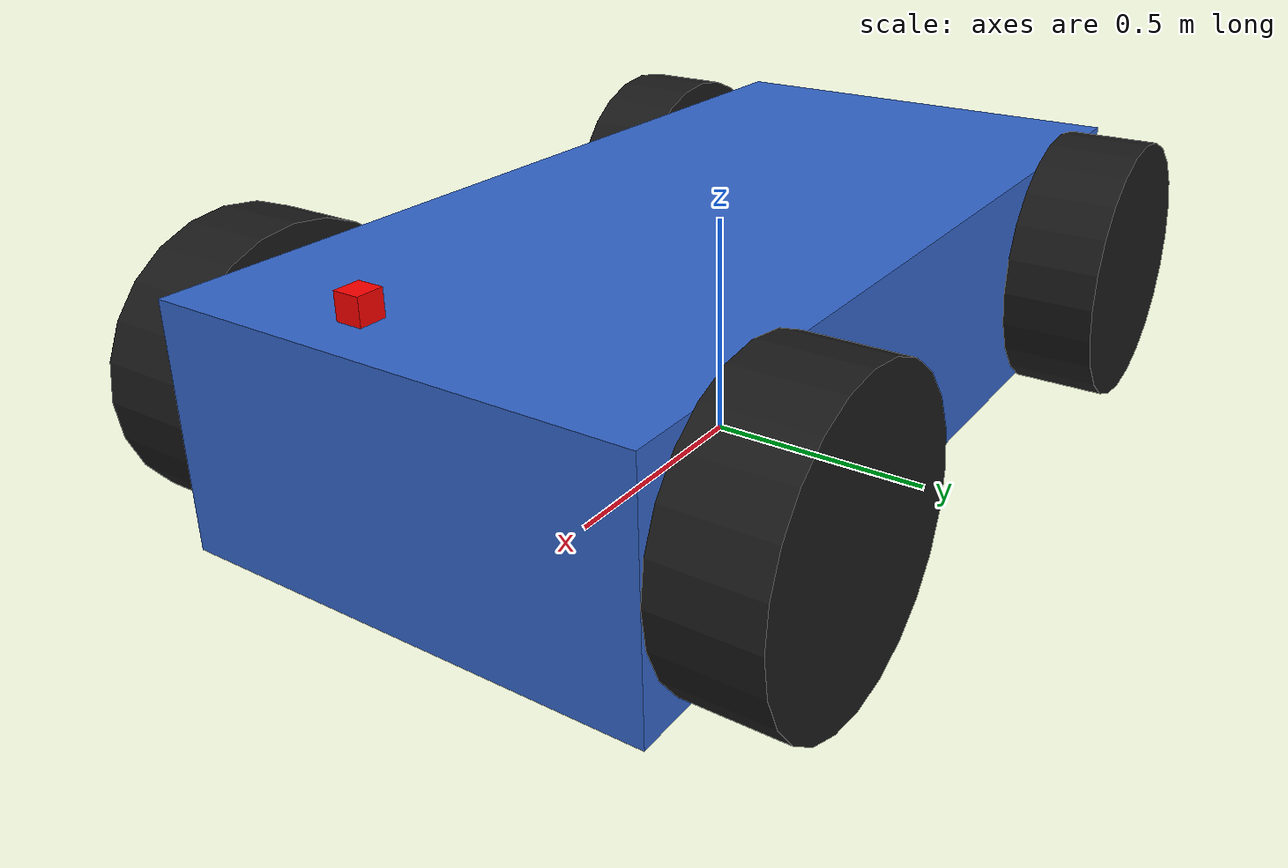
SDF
<?xml version="1.0"?>
<sdf version="1.9">
  <model name="simple_car">

    <!-- Base Link (chassis) -->
    <link name="base_link">
      <pose>0 0 0.3 0 0 0</pose>

      <inertial>
        <mass>100.0</mass>
        <inertia>
          <ixx>10.0</ixx>
          <iyy>10.0</iyy>
          <izz>10.0</izz>
        </inertia>
      </inertial>

      <collision name="collision">
        <geometry>
          <box>
            <size>2.0 1.0 0.5</size>
          </box>
        </geometry>
      </collision>

      <visual name="visual">
        <geometry>
          <box>
            <size>2.0 1.0 0.5</size>
          </box>
        </geometry>
        <material>
          <ambient>0.2 0.4 0.8 1.0</ambient>
          <diffuse>0.2 0.4 0.8 1.0</diffuse>
        </material>
      </visual>
    </link>

    <!-- Front Camera -->
    <link name="camera_link">
      <pose relative_to="base_link">1.0 0 0.35 0 0 0</pose>

      <inertial>
        <mass>0.1</mass>
        <inertia>
          <ixx>0.001</ixx>
          <iyy>0.001</iyy>
          <izz>0.001</izz>
        </inertia>
      </inertial>

      <visual name="visual">
        <geometry>
          <box>
            <size>0.05 0.05 0.05</size>
          </box>
        </geometry>
        <material>
          <ambient>1.0 0.0 0.0 1.0</ambient>
          <diffuse>1.0 0.0 0.0 1.0</diffuse>
        </material>
      </visual>

      <sensor name="camera" type="camera">
        <camera>
          <horizontal_fov>1.047</horizontal_fov>
          <image>
            <width>640</width>
            <height>480</height>
          </image>
          <clip>
            <near>0.1</near>
            <far>100</far>
          </clip>
        </camera>
        <always_on>1</always_on>
        <update_rate>30</update_rate>
        <visualize>true</visualize>
        <topic>/camera/image_raw</topic>
      </sensor>
    </link>

    <joint name="camera_joint" type="fixed">
      <parent>base_link</parent>
      <child>camera_link</child>
    </joint>

    <!-- Wheels -->
    <link name="front_left_wheel">
      <pose relative_to="base_link">0.7 0.6 0 -1.5708 0 0</pose>

      <inertial>
        <mass>5.0</mass>
        <inertia>
          <ixx>0.1</ixx>
          <iyy>0.1</iyy>
          <izz>0.1</izz>
        </inertia>
      </inertial>

      <collision name="collision">
        <geometry>
          <cylinder>
            <radius>0.3</radius>
            <length>0.2</length>
          </cylinder>
        </geometry>
      </collision>

      <visual name="visual">
        <geometry>
          <cylinder>
            <radius>0.3</radius>
            <length>0.2</length>
          </cylinder>
        </geometry>
        <material>
          <ambient>0.1 0.1 0.1 1.0</ambient>
          <diffuse>0.1 0.1 0.1 1.0</diffuse>
        </material>
      </visual>
    </link>

    <joint name="front_left_wheel_joint" type="revolute">
      <parent>base_link</parent>
      <child>front_left_wheel</child>
      <axis>
        <xyz>0 0 1</xyz>
      </axis>
    </joint>

    <link name="front_right_wheel">
      <pose relative_to="base_link">0.7 -0.6 0 -1.5708 0 0</pose>

      <inertial>
        <mass>5.0</mass>
        <inertia>
          <ixx>0.1</ixx>
          <iyy>0.1</iyy>
          <izz>0.1</izz>
        </inertia>
      </inertial>

      <collision name="collision">
        <geometry>
          <cylinder>
            <radius>0.3</radius>
            <length>0.2</length>
          </cylinder>
        </geometry>
      </collision>

      <visual name="visual">
        <geometry>
          <cylinder>
            <radius>0.3</radius>
            <length>0.2</length>
          </cylinder>
        </geometry>
        <material>
          <ambient>0.1 0.1 0.1 1.0</ambient>
          <diffuse>0.1 0.1 0.1 1.0</diffuse>
        </material>
      </visual>
    </link>

    <joint name="front_right_wheel_joint" type="revolute">
      <parent>base_link</parent>
      <child>front_right_wheel</child>
      <axis>
        <xyz>0 0 1</xyz>
      </axis>
    </joint>

    <link name="rear_left_wheel">
      <pose relative_to="base_link">-0.7 0.6 0 -1.5708 0 0</pose>

      <inertial>
        <mass>5.0</mass>
        <inertia>
          <ixx>0.1</ixx>
          <iyy>0.1</iyy>
          <izz>0.1</izz>
        </inertia>
      </inertial>

      <collision name="collision">
        <geometry>
          <cylinder>
            <radius>0.3</radius>
            <length>0.2</length>
          </cylinder>
        </geometry>
      </collision>

      <visual name="visual">
        <geometry>
          <cylinder>
            <radius>0.3</radius>
            <length>0.2</length>
          </cylinder>
        </geometry>
        <material>
          <ambient>0.1 0.1 0.1 1.0</ambient>
          <diffuse>0.1 0.1 0.1 1.0</diffuse>
        </material>
      </visual>
    </link>

    <joint name="rear_left_wheel_joint" type="revolute">
      <parent>base_link</parent>
      <child>rear_left_wheel</child>
      <axis>
        <xyz>0 0 1</xyz>
      </axis>
    </joint>

    <link name="rear_right_wheel">
      <pose relative_to="base_link">-0.7 -0.6 0 -1.5708 0 0</pose>

      <inertial>
        <mass>5.0</mass>
        <inertia>
          <ixx>0.1</ixx>
          <iyy>0.1</iyy>
          <izz>0.1</izz>
        </inertia>
      </inertial>

      <collision name="collision">
        <geometry>
          <cylinder>
            <radius>0.3</radius>
            <length>0.2</length>
          </cylinder>
        </geometry>
      </collision>

      <visual name="visual">
        <geometry>
          <cylinder>
            <radius>0.3</radius>
            <length>0.2</length>
          </cylinder>
        </geometry>
        <material>
          <ambient>0.1 0.1 0.1 1.0</ambient>
          <diffuse>0.1 0.1 0.1 1.0</diffuse>
        </material>
      </visual>
    </link>

    <joint name="rear_right_wheel_joint" type="revolute">
      <parent>base_link</parent>
      <child>rear_right_wheel</child>
      <axis>
        <xyz>0 0 1</xyz>
      </axis>
    </joint>

    <!-- Differential Drive Plugin -->
    <plugin
      filename="gz-sim-diff-drive-system"
      name="gz::sim::systems::DiffDrive">
      <left_joint>front_left_wheel_joint</left_joint>
      <left_joint>rear_left_wheel_joint</left_joint>
      <right_joint>front_right_wheel_joint</right_joint>
      <right_joint>rear_right_wheel_joint</right_joint>
      <wheel_separation>1.2</wheel_separation>
      <wheel_radius>0.3</wheel_radius>
      <max_linear_acceleration>1.0</max_linear_acceleration>
      <min_linear_acceleration>-1.0</min_linear_acceleration>
      <max_angular_acceleration>2.0</max_angular_acceleration>
      <min_angular_acceleration>-2.0</min_angular_acceleration>
      <max_linear_velocity>5.0</max_linear_velocity>
      <min_linear_velocity>-5.0</min_linear_velocity>
      <max_angular_velocity>2.0</max_angular_velocity>
      <min_angular_velocity>-2.0</min_angular_velocity>
      <odom_publish_frequency>50</odom_publish_frequency>
      <topic>/cmd_vel</topic>
      <odom_topic>/odom</odom_topic>
      <frame_id>odom</frame_id>
      <child_frame_id>base_link</child_frame_id>
    </plugin>

  </model>
</sdf>
